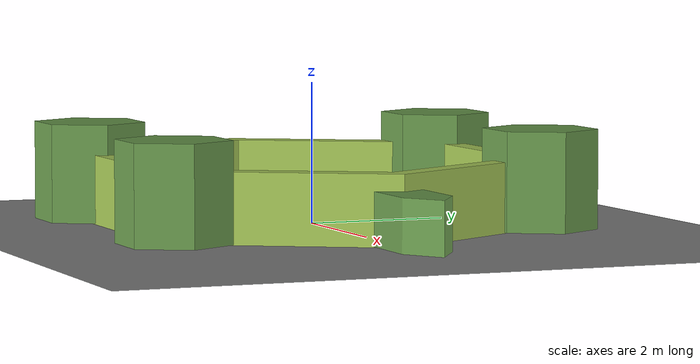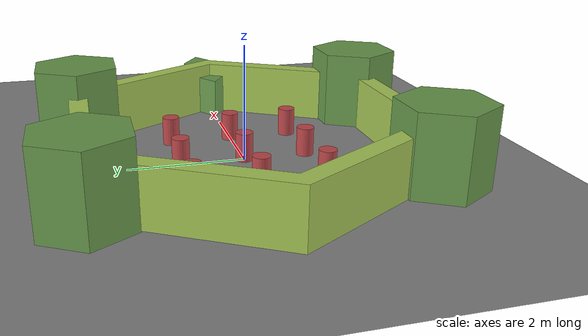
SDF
<sdf version='1.5'>
    <!-- Draw Circle -->
    <model name='ros_symbol'>
      <static>1</static>

    <link name="chao">

      <collision name="chao">
        <geometry>
          <plane>
            <normal>0 0 1</normal>
            <size>100 100</size>
          </plane>
        </geometry>

        <surface>
          <friction>
            <ode>
              <mu>0.5</mu>
              <mu2>0.5</mu2>
              <slip1>0.05</slip1>
              <slip2>0.05</slip2>
            </ode>
          </friction>

          <contact>
            <ode>
              <kp>100000</kp>
              <kd>1</kd>
            </ode>
          </contact>
        </surface>
      </collision>

      <visual name="chao">
        <geometry>
          <plane>
            <normal>0 0 1</normal>
            <size>100 100</size>
          </plane>
        </geometry>

        <material>
          <ambient>0.5 0.5 0.5 1</ambient>
          <diffuse>0.5 0.5 0.5 1</diffuse>
        </material>
      </visual>

    </link>

      <link name='symbol'>
        <collision name='one_one'>
          <pose>-1.1 -1.1 0.25 0 0 0</pose>
          <geometry>
            <cylinder>
              <radius>0.15</radius>
              <length>0.5</length>
            </cylinder>
          </geometry>
          <max_contacts>10</max_contacts>
          <surface>
            <bounce/>
            <friction>
              <ode/>
            </friction>
            <contact>
              <ode/>
            </contact>
          </surface>
        </collision>

        <visual name='one_one'>
          <pose>-1.1 -1.1 0.25 0 0 0</pose>
          <geometry>
            <cylinder>
              <radius>0.15</radius>
              <length>0.5</length>
            </cylinder>
          </geometry>
          <material>
            <ambient>.74 .28 .29 1</ambient>
            <diffuse>.74 .28 .29 1</diffuse>
            <specular>1 1 1 1</specular>
          </material>
        </visual>

        <collision name='one_two'>
          <pose>-1.1 0 0.25 0 0 0</pose>
          <geometry>
            <cylinder>
              <radius>0.15</radius>
              <length>0.5</length>
            </cylinder>
          </geometry>
          <max_contacts>10</max_contacts>
          <surface>
            <bounce/>
            <friction>
              <ode/>
            </friction>
            <contact>
              <ode/>
            </contact>
          </surface>
        </collision>

        <visual name='one_two'>
          <pose>-1.1 0 0.25 0 0 0</pose>
          <geometry>
            <cylinder>
              <radius>0.15</radius>
              <length>0.5</length>
            </cylinder>
          </geometry>
          <material>
            <ambient>.74 .28 .29 1</ambient>
            <diffuse>.74 .28 .29 1</diffuse>
            <specular>1 1 1 1</specular>
          </material>
        </visual>

        <collision name='one_three'>
          <pose>-1.1 1.1 0.25 0 0 0</pose>
          <geometry>
            <cylinder>
              <radius>0.15</radius>
              <length>0.5</length>
            </cylinder>
          </geometry>
          <max_contacts>10</max_contacts>
          <surface>
            <bounce/>
            <friction>
              <ode/>
            </friction>
            <contact>
              <ode/>
            </contact>
          </surface>
        </collision>

        <visual name='one_three'>
          <pose>-1.1 1.1 0.25 0 0 0</pose>
          <geometry>
            <cylinder>
              <radius>0.15</radius>
              <length>0.5</length>
            </cylinder>
          </geometry>
          <material>
            <ambient>.74 .28 .29 1</ambient>
            <diffuse>.74 .28 .29 1</diffuse>
            <specular>1 1 1 1</specular>
          </material>
        </visual>

        <collision name='two_one'>
          <pose>0 -1.1 0.25 0 0 0</pose>
          <geometry>
            <cylinder>
              <radius>0.15</radius>
              <length>0.5</length>
            </cylinder>
          </geometry>
          <max_contacts>10</max_contacts>
          <surface>
            <bounce/>
            <friction>
              <ode/>
            </friction>
            <contact>
              <ode/>
            </contact>
          </surface>
        </collision>

        <visual name='two_one'>
          <pose>0 -1.1 0.25 0 0 0</pose>
          <geometry>
            <cylinder>
              <radius>0.15</radius>
              <length>0.5</length>
            </cylinder>
          </geometry>
          <material>
            <ambient>.74 .28 .29 1</ambient>
            <diffuse>.74 .28 .29 1</diffuse>
            <specular>1 1 1 1</specular>
          </material>
        </visual>

        <collision name='two_two'>
          <pose>0 0 0.25 0 0 0</pose>
          <geometry>
            <cylinder>
              <radius>0.15</radius>
              <length>0.5</length>
            </cylinder>
          </geometry>
          <max_contacts>10</max_contacts>
          <surface>
            <bounce/>
            <friction>
              <ode/>
            </friction>
            <contact>
              <ode/>
            </contact>
          </surface>
        </collision>

        <visual name='two_two'>
          <pose>0 0 0.25 0 0 0</pose>
          <geometry>
            <cylinder>
              <radius>0.15</radius>
              <length>0.5</length>
            </cylinder>
          </geometry>
          <material>
            <ambient>.74 .28 .29 1</ambient>
            <diffuse>.74 .28 .29 1</diffuse>
            <specular>1 1 1 1</specular>
          </material>
        </visual>

        <collision name='two_three'>
          <pose>0 1.1 0.25 0 0 0</pose>
          <geometry>
            <cylinder>
              <radius>0.15</radius>
              <length>0.5</length>
            </cylinder>
          </geometry>
          <max_contacts>10</max_contacts>
          <surface>
            <bounce/>
            <friction>
              <ode/>
            </friction>
            <contact>
              <ode/>
            </contact>
          </surface>
        </collision>

        <visual name='two_three'>
          <pose>0 1.1 0.25 0 0 0</pose>
          <geometry>
            <cylinder>
              <radius>0.15</radius>
              <length>0.5</length>
            </cylinder>
          </geometry>
          <material>
            <ambient>.74 .28 .29 1</ambient>
            <diffuse>.74 .28 .29 1</diffuse>
            <specular>1 1 1 1</specular>
          </material>
        </visual>

        <collision name='three_one'>
          <pose>1.1 -1.1 0.25 0 0 0</pose>
          <geometry>
            <cylinder>
              <radius>0.15</radius>
              <length>0.5</length>
            </cylinder>
          </geometry>
          <max_contacts>10</max_contacts>
          <surface>
            <bounce/>
            <friction>
              <ode/>
            </friction>
            <contact>
              <ode/>
            </contact>
          </surface>
        </collision>

        <visual name='three_one'>
          <pose>1.1 -1.1 0.25 0 0 0</pose>
          <geometry>
            <cylinder>
              <radius>0.15</radius>
              <length>0.5</length>
            </cylinder>
          </geometry>
          <material>
            <ambient>.74 .28 .29 1</ambient>
            <diffuse>.74 .28 .29 1</diffuse>
            <specular>1 1 1 1</specular>
          </material>
        </visual>

        <collision name='three_two'>
          <pose>1.1 0 0.25 0 0 0</pose>
          <geometry>
            <cylinder>
              <radius>0.15</radius>
              <length>0.5</length>
            </cylinder>
          </geometry>
          <max_contacts>10</max_contacts>
          <surface>
            <bounce/>
            <friction>
              <ode/>
            </friction>
            <contact>
              <ode/>
            </contact>
          </surface>
        </collision>

        <visual name='three_two'>
          <pose>1.1 0 0.25 0 0 0</pose>
          <geometry>
            <cylinder>
              <radius>0.15</radius>
              <length>0.5</length>
            </cylinder>
          </geometry>
          <material>
            <ambient>.74 .28 .29 1</ambient>
            <diffuse>.74 .28 .29 1</diffuse>
            <specular>1 1 1 1</specular>
          </material>
        </visual>

        <collision name='three_three'>
          <pose>1.1 1.1 0.25 0 0 0</pose>
          <geometry>
            <cylinder>
              <radius>0.15</radius>
              <length>0.5</length>
            </cylinder>
          </geometry>
          <max_contacts>10</max_contacts>
          <surface>
            <bounce/>
            <friction>
              <ode/>
            </friction>
            <contact>
              <ode/>
            </contact>
          </surface>
        </collision>

        <visual name='three_three'>
          <pose>1.1 1.1 0.25 0 0 0</pose>
          <geometry>
            <cylinder>
              <radius>0.15</radius>
              <length>0.5</length>
            </cylinder>
          </geometry>
          <material>
            <ambient>.74 .28 .29 1</ambient>
            <diffuse>.74 .28 .29 1</diffuse>
            <specular>1 1 1 1</specular>
          </material>
        </visual>

        <!-- Draw Hexagon -->
        <collision name='head'>
          <pose>3.5 0 0 0 0 0</pose>
          <geometry>
            <mesh>
              <uri>meshes/hexagon.dae</uri>
              <scale>.74 .28 .29</scale>
            </mesh>
          </geometry>
          <max_contacts>10</max_contacts>
          <surface>
            <bounce/>
            <friction>
              <ode/>
            </friction>
            <contact>
              <ode/>
            </contact>
          </surface>
        </collision>

        <visual name='head'>
          <pose>3.5 0 0 0 0 0</pose>
          <geometry>
            <mesh>
              <uri>meshes/hexagon.dae</uri>
              <scale>.74 .28 .29</scale>
            </mesh>
          </geometry>
          <material>
            <ambient>0.41 0.6 0.30 1</ambient>
            <diffuse>0.41 0.6 0.30 1</diffuse>
            <specular>1 1 1 1</specular>
          </material>
        </visual>

        <collision name='left_hand'>
          <pose>1.8 2.7 0 0 0 0</pose>
          <geometry>
            <mesh>
              <uri>meshes/hexagon.dae</uri>
              <scale>0.55 0.55 0.55</scale>
            </mesh>
          </geometry>
          <max_contacts>10</max_contacts>
          <surface>
            <bounce/>
            <friction>
              <ode/>
            </friction>
            <contact>
              <ode/>
            </contact>
          </surface>
        </collision>

        <visual name='left_hand'>
          <pose>1.8 2.7 0 0 0 0</pose>
          <geometry>
            <mesh>
              <uri>meshes/hexagon.dae</uri>
              <scale>0.55 0.55 0.55</scale>
            </mesh>
          </geometry>
          <material>
            <ambient>0.41 0.6 0.30 1</ambient>
            <diffuse>0.41 0.6 0.30 1</diffuse>
            <specular>1 1 1 1</specular>
          </material>
        </visual>

        <collision name='right_hand'>
          <pose>1.8 -2.7 0 0 0 0</pose>
          <geometry>
            <mesh>
              <uri>meshes/hexagon.dae</uri>
              <scale>0.55 0.55 0.55</scale>
            </mesh>
          </geometry>
          <max_contacts>10</max_contacts>
          <surface>
            <bounce/>
            <friction>
              <ode/>
            </friction>
            <contact>
              <ode/>
            </contact>
          </surface>
        </collision>

        <visual name='right_hand'>
          <pose>1.8 -2.7 0 0 0 0</pose>
          <geometry>
            <mesh>
              <uri>meshes/hexagon.dae</uri>
              <scale>0.55 0.55 0.55</scale>
            </mesh>
          </geometry>
          <material>
            <ambient>0.41 0.6 0.30 1</ambient>
            <diffuse>0.41 0.6 0.30 1</diffuse>
            <specular>1 1 1 1</specular>
          </material>
        </visual>

        <collision name='left_foot'>
          <pose>-1.8 2.7 0 0 0 0</pose>
          <geometry>
            <mesh>
              <uri>meshes/hexagon.dae</uri>
              <scale>0.55 0.55 0.55</scale>
            </mesh>
          </geometry>
          <max_contacts>10</max_contacts>
          <surface>
            <bounce/>
            <friction>
              <ode/>
            </friction>
            <contact>
              <ode/>
            </contact>
          </surface>
        </collision>

        <visual name='left_foot'>
          <pose>-1.8 2.7 0 0 0 0</pose>
          <geometry>
            <mesh>
              <uri>meshes/hexagon.dae</uri>
              <scale>0.55 0.55 0.55</scale>
            </mesh>
          </geometry>
          <material>
            <ambient>0.41 0.6 0.30 1</ambient>
            <diffuse>0.41 0.6 0.30 1</diffuse>
            <specular>1 1 1 1</specular>
          </material>
        </visual>

        <collision name='right_foot'>
          <pose>-1.8 -2.7 0 0 0 0</pose>
          <geometry>
            <mesh>
              <uri>meshes/hexagon.dae</uri>
              <scale>0.55 0.55 0.55</scale>
            </mesh>
          </geometry>
          <max_contacts>10</max_contacts>
          <surface>
            <bounce/>
            <friction>
              <ode/>
            </friction>
            <contact>
              <ode/>
            </contact>
          </surface>
        </collision>

        <visual name='right_foot'>
          <pose>-1.8 -2.7 0 0 0 0</pose>
          <geometry>
            <mesh>
              <uri>meshes/hexagon.dae</uri>
              <scale>0.55 0.55 0.55</scale>
            </mesh>
          </geometry>
          <material>
            <ambient>0.41 0.6 0.30 1</ambient>
            <diffuse>0.41 0.6 0.30 1</diffuse>
            <specular>1 1 1 1</specular>
          </material>
        </visual>

        <!-- Draw Wall -->
        <collision name='body'>
        <pose>0 0 -0.3 0 0 -1.5708</pose>
        <geometry>
          <mesh>
            <uri>meshes/wall.dae</uri>
            <scale>0.25 0.25 0.25</scale>
          </mesh>
        </geometry>
        <max_contacts>10</max_contacts>
        <surface>
          <bounce/>
          <friction>
            <ode/>
          </friction>
          <contact>
            <ode/>
          </contact>
        </surface>
      </collision>

      <visual name='body'>
        <pose>0 0 -0.3 0 0 -1.5708</pose>
        <geometry>
          <mesh>
            <uri>meshes/wall.dae</uri>
            <scale>0.25 0.25 0.25</scale>
          </mesh>
        </geometry>
          <material>
            <ambient>0.65 0.78 0.34 1</ambient>
            <diffuse>0.65 0.78 0.34 1</diffuse>
            <specular>1 1 1 1</specular>
          </material>
      </visual>
    </link>
  </model>
</sdf>
